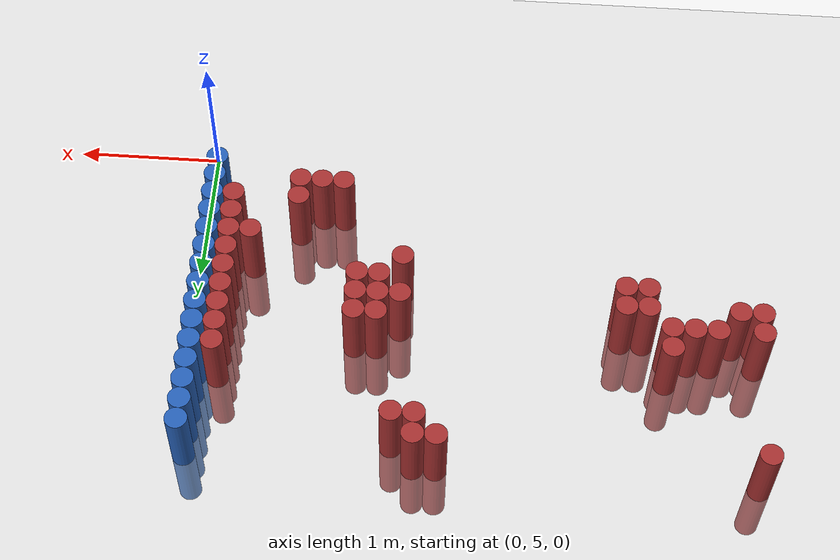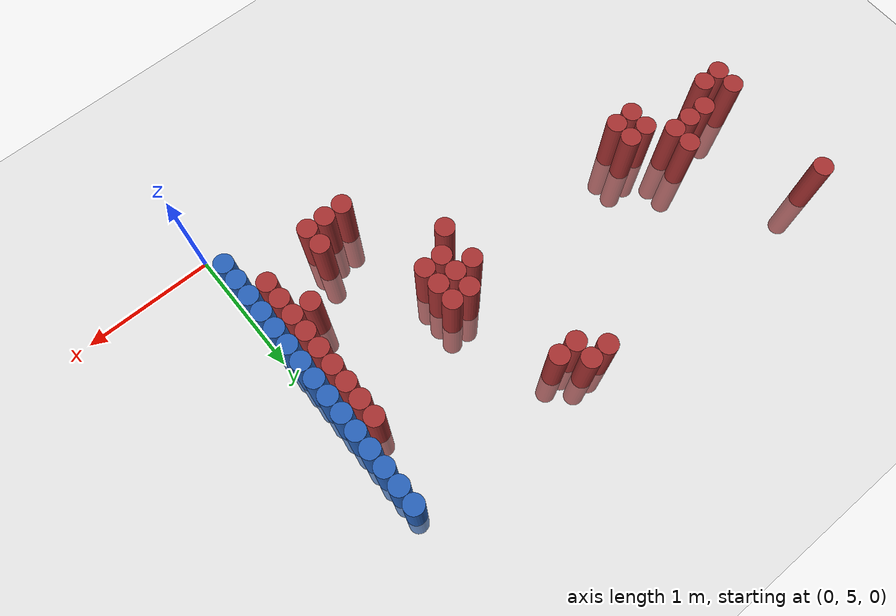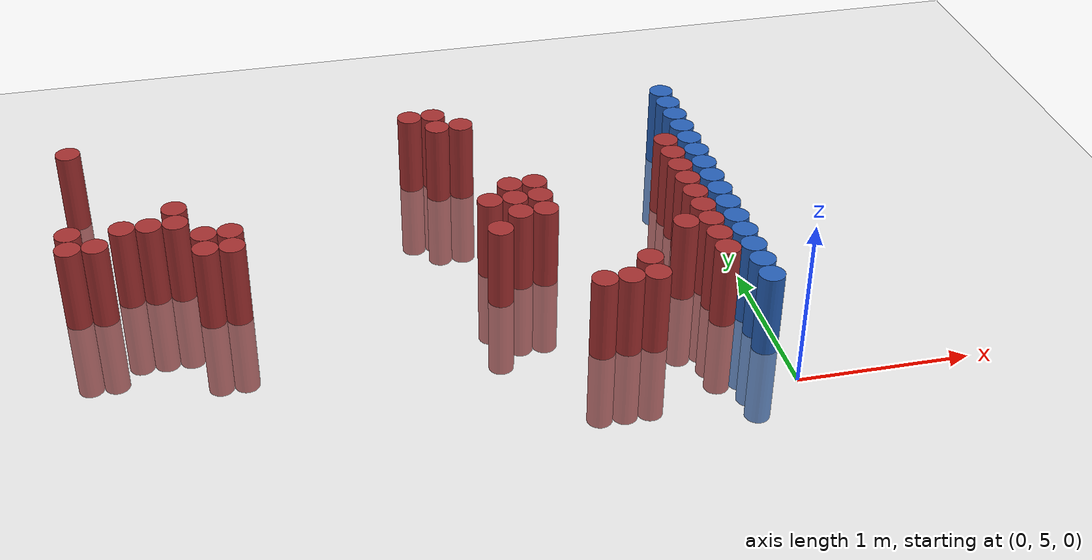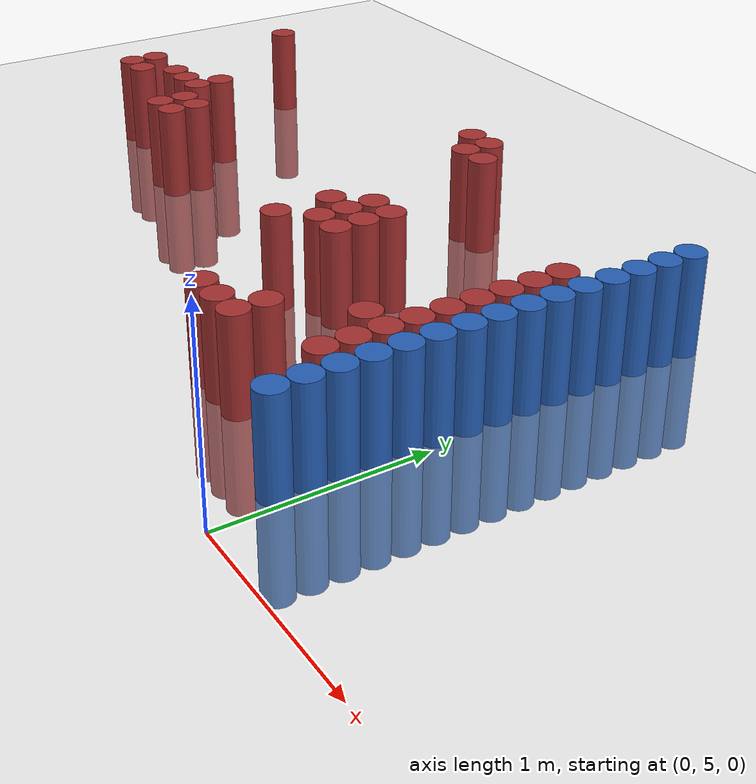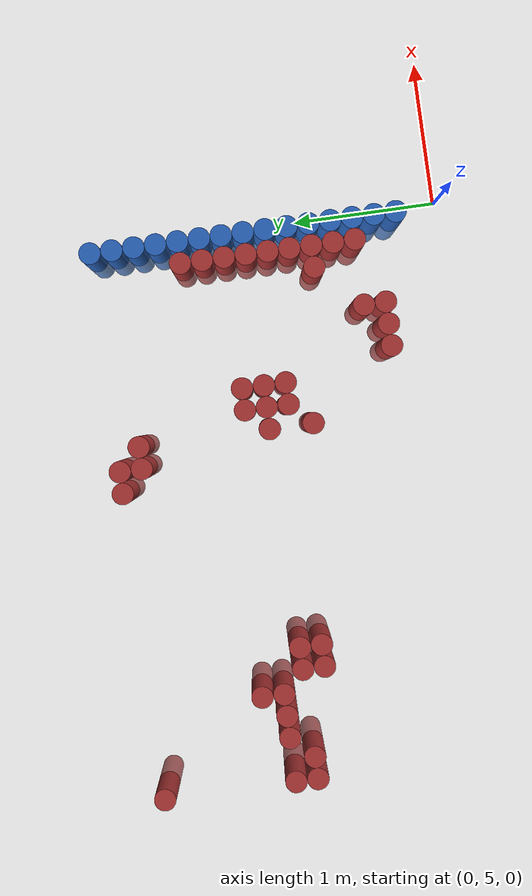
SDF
<sdf version="1.6">
 <world name="default">
  <model name="ground_plane">
   <static>1</static>
   <link name="link">
    <collision name="collision">
     <geometry><plane><normal>0 0 1</normal><size>100 100</size></plane></geometry>
     <surface><friction><ode><mu>100</mu><mu2>50</mu2></ode></friction></surface>
    </collision>
    <visual name="visual">
     <cast_shadows>0</cast_shadows>
     <geometry><plane><normal>0 0 1</normal><size>100 100</size></plane></geometry>
     <material>
      <script><uri>file://media/materials/scripts/gazebo.material</uri><name>Gazebo/Grey</name></script>
     </material>
    </visual>
   </link>
  </model>
  <model name="unit_cylinder_151">
   <static>1</static>
   <pose>-3.825000 6.375000 0.000000 0.000000 0.000000 0.000000</pose>
   <link name="link">
    <inertial>
     <mass>1</mass>
     <inertia><ixx>0.145833</ixx><ixy>0</ixy><ixz>0</ixz><iyy>0.145833</iyy><iyz>0</iyz><izz>0.125</izz></inertia>
    </inertial>
    <collision name="collision">
     <geometry><cylinder><radius>0.075000</radius><length>1</length></cylinder></geometry>
    </collision>
    <visual name="visual">
     <geometry><cylinder><radius>0.075000</radius><length>1</length></cylinder></geometry>
     <material>
      <ambient>0.648000 0.192000 0.192000 1</ambient>
      <diffuse>0.648000 0.192000 0.192000 1</diffuse>
     </material>
     <material>
      <script><name>Gazebo/Grey</name><uri>file://media/materials/scripts/gazebo.material</uri></script>
     </material>
    </visual>
   </link>
  </model>
  <model name="unit_cylinder_152">
   <static>1</static>
   <pose>-3.825000 6.525000 0.000000 0.000000 0.000000 0.000000</pose>
   <link name="link">
    <inertial>
     <mass>1</mass>
     <inertia><ixx>0.145833</ixx><ixy>0</ixy><ixz>0</ixz><iyy>0.145833</iyy><iyz>0</iyz><izz>0.125</izz></inertia>
    </inertial>
    <collision name="collision">
     <geometry><cylinder><radius>0.075000</radius><length>1</length></cylinder></geometry>
    </collision>
    <visual name="visual">
     <geometry><cylinder><radius>0.075000</radius><length>1</length></cylinder></geometry>
     <material>
      <ambient>0.648000 0.192000 0.192000 1</ambient>
      <diffuse>0.648000 0.192000 0.192000 1</diffuse>
     </material>
     <material>
      <script><name>Gazebo/Grey</name><uri>file://media/materials/scripts/gazebo.material</uri></script>
     </material>
    </visual>
   </link>
  </model>
  <model name="unit_cylinder_153">
   <static>1</static>
   <pose>-3.825000 7.425000 0.000000 0.000000 0.000000 0.000000</pose>
   <link name="link">
    <inertial>
     <mass>1</mass>
     <inertia><ixx>0.145833</ixx><ixy>0</ixy><ixz>0</ixz><iyy>0.145833</iyy><iyz>0</iyz><izz>0.125</izz></inertia>
    </inertial>
    <collision name="collision">
     <geometry><cylinder><radius>0.075000</radius><length>1</length></cylinder></geometry>
    </collision>
    <visual name="visual">
     <geometry><cylinder><radius>0.075000</radius><length>1</length></cylinder></geometry>
     <material>
      <ambient>0.648000 0.192000 0.192000 1</ambient>
      <diffuse>0.648000 0.192000 0.192000 1</diffuse>
     </material>
     <material>
      <script><name>Gazebo/Grey</name><uri>file://media/materials/scripts/gazebo.material</uri></script>
     </material>
    </visual>
   </link>
  </model>
  <model name="unit_cylinder_157">
   <static>1</static>
   <pose>-3.675000 6.375000 0.000000 0.000000 0.000000 0.000000</pose>
   <link name="link">
    <inertial>
     <mass>1</mass>
     <inertia><ixx>0.145833</ixx><ixy>0</ixy><ixz>0</ixz><iyy>0.145833</iyy><iyz>0</iyz><izz>0.125</izz></inertia>
    </inertial>
    <collision name="collision">
     <geometry><cylinder><radius>0.075000</radius><length>1</length></cylinder></geometry>
    </collision>
    <visual name="visual">
     <geometry><cylinder><radius>0.075000</radius><length>1</length></cylinder></geometry>
     <material>
      <ambient>0.648000 0.192000 0.192000 1</ambient>
      <diffuse>0.648000 0.192000 0.192000 1</diffuse>
     </material>
     <material>
      <script><name>Gazebo/Grey</name><uri>file://media/materials/scripts/gazebo.material</uri></script>
     </material>
    </visual>
   </link>
  </model>
  <model name="unit_cylinder_160">
   <static>1</static>
   <pose>-3.525000 6.525000 0.000000 0.000000 0.000000 0.000000</pose>
   <link name="link">
    <inertial>
     <mass>1</mass>
     <inertia><ixx>0.145833</ixx><ixy>0</ixy><ixz>0</ixz><iyy>0.145833</iyy><iyz>0</iyz><izz>0.125</izz></inertia>
    </inertial>
    <collision name="collision">
     <geometry><cylinder><radius>0.075000</radius><length>1</length></cylinder></geometry>
    </collision>
    <visual name="visual">
     <geometry><cylinder><radius>0.075000</radius><length>1</length></cylinder></geometry>
     <material>
      <ambient>0.648000 0.192000 0.192000 1</ambient>
      <diffuse>0.648000 0.192000 0.192000 1</diffuse>
     </material>
     <material>
      <script><name>Gazebo/Grey</name><uri>file://media/materials/scripts/gazebo.material</uri></script>
     </material>
    </visual>
   </link>
  </model>
  <model name="unit_cylinder_163">
   <static>1</static>
   <pose>-3.375000 6.525000 0.000000 0.000000 0.000000 0.000000</pose>
   <link name="link">
    <inertial>
     <mass>1</mass>
     <inertia><ixx>0.145833</ixx><ixy>0</ixy><ixz>0</ixz><iyy>0.145833</iyy><iyz>0</iyz><izz>0.125</izz></inertia>
    </inertial>
    <collision name="collision">
     <geometry><cylinder><radius>0.075000</radius><length>1</length></cylinder></geometry>
    </collision>
    <visual name="visual">
     <geometry><cylinder><radius>0.075000</radius><length>1</length></cylinder></geometry>
     <material>
      <ambient>0.648000 0.192000 0.192000 1</ambient>
      <diffuse>0.648000 0.192000 0.192000 1</diffuse>
     </material>
     <material>
      <script><name>Gazebo/Grey</name><uri>file://media/materials/scripts/gazebo.material</uri></script>
     </material>
    </visual>
   </link>
  </model>
  <model name="unit_cylinder_168">
   <static>1</static>
   <pose>-3.225000 6.525000 0.000000 0.000000 0.000000 0.000000</pose>
   <link name="link">
    <inertial>
     <mass>1</mass>
     <inertia><ixx>0.145833</ixx><ixy>0</ixy><ixz>0</ixz><iyy>0.145833</iyy><iyz>0</iyz><izz>0.125</izz></inertia>
    </inertial>
    <collision name="collision">
     <geometry><cylinder><radius>0.075000</radius><length>1</length></cylinder></geometry>
    </collision>
    <visual name="visual">
     <geometry><cylinder><radius>0.075000</radius><length>1</length></cylinder></geometry>
     <material>
      <ambient>0.648000 0.192000 0.192000 1</ambient>
      <diffuse>0.648000 0.192000 0.192000 1</diffuse>
     </material>
     <material>
      <script><name>Gazebo/Grey</name><uri>file://media/materials/scripts/gazebo.material</uri></script>
     </material>
    </visual>
   </link>
  </model>
  <model name="unit_cylinder_169">
   <static>1</static>
   <pose>-3.225000 6.675000 0.000000 0.000000 0.000000 0.000000</pose>
   <link name="link">
    <inertial>
     <mass>1</mass>
     <inertia><ixx>0.145833</ixx><ixy>0</ixy><ixz>0</ixz><iyy>0.145833</iyy><iyz>0</iyz><izz>0.125</izz></inertia>
    </inertial>
    <collision name="collision">
     <geometry><cylinder><radius>0.075000</radius><length>1</length></cylinder></geometry>
    </collision>
    <visual name="visual">
     <geometry><cylinder><radius>0.075000</radius><length>1</length></cylinder></geometry>
     <material>
      <ambient>0.648000 0.192000 0.192000 1</ambient>
      <diffuse>0.648000 0.192000 0.192000 1</diffuse>
     </material>
     <material>
      <script><name>Gazebo/Grey</name><uri>file://media/materials/scripts/gazebo.material</uri></script>
     </material>
    </visual>
   </link>
  </model>
  <model name="unit_cylinder_172">
   <static>1</static>
   <pose>-3.075000 6.225000 0.000000 0.000000 0.000000 0.000000</pose>
   <link name="link">
    <inertial>
     <mass>1</mass>
     <inertia><ixx>0.145833</ixx><ixy>0</ixy><ixz>0</ixz><iyy>0.145833</iyy><iyz>0</iyz><izz>0.125</izz></inertia>
    </inertial>
    <collision name="collision">
     <geometry><cylinder><radius>0.075000</radius><length>1</length></cylinder></geometry>
    </collision>
    <visual name="visual">
     <geometry><cylinder><radius>0.075000</radius><length>1</length></cylinder></geometry>
     <material>
      <ambient>0.648000 0.192000 0.192000 1</ambient>
      <diffuse>0.648000 0.192000 0.192000 1</diffuse>
     </material>
     <material>
      <script><name>Gazebo/Grey</name><uri>file://media/materials/scripts/gazebo.material</uri></script>
     </material>
    </visual>
   </link>
  </model>
  <model name="unit_cylinder_173">
   <static>1</static>
   <pose>-3.075000 6.375000 0.000000 0.000000 0.000000 0.000000</pose>
   <link name="link">
    <inertial>
     <mass>1</mass>
     <inertia><ixx>0.145833</ixx><ixy>0</ixy><ixz>0</ixz><iyy>0.145833</iyy><iyz>0</iyz><izz>0.125</izz></inertia>
    </inertial>
    <collision name="collision">
     <geometry><cylinder><radius>0.075000</radius><length>1</length></cylinder></geometry>
    </collision>
    <visual name="visual">
     <geometry><cylinder><radius>0.075000</radius><length>1</length></cylinder></geometry>
     <material>
      <ambient>0.648000 0.192000 0.192000 1</ambient>
      <diffuse>0.648000 0.192000 0.192000 1</diffuse>
     </material>
     <material>
      <script><name>Gazebo/Grey</name><uri>file://media/materials/scripts/gazebo.material</uri></script>
     </material>
    </visual>
   </link>
  </model>
  <model name="unit_cylinder_174">
   <static>1</static>
   <pose>-2.925000 6.225000 0.000000 0.000000 0.000000 0.000000</pose>
   <link name="link">
    <inertial>
     <mass>1</mass>
     <inertia><ixx>0.145833</ixx><ixy>0</ixy><ixz>0</ixz><iyy>0.145833</iyy><iyz>0</iyz><izz>0.125</izz></inertia>
    </inertial>
    <collision name="collision">
     <geometry><cylinder><radius>0.075000</radius><length>1</length></cylinder></geometry>
    </collision>
    <visual name="visual">
     <geometry><cylinder><radius>0.075000</radius><length>1</length></cylinder></geometry>
     <material>
      <ambient>0.648000 0.192000 0.192000 1</ambient>
      <diffuse>0.648000 0.192000 0.192000 1</diffuse>
     </material>
     <material>
      <script><name>Gazebo/Grey</name><uri>file://media/materials/scripts/gazebo.material</uri></script>
     </material>
    </visual>
   </link>
  </model>
  <model name="unit_cylinder_175">
   <static>1</static>
   <pose>-2.925000 6.375000 0.000000 0.000000 0.000000 0.000000</pose>
   <link name="link">
    <inertial>
     <mass>1</mass>
     <inertia><ixx>0.145833</ixx><ixy>0</ixy><ixz>0</ixz><iyy>0.145833</iyy><iyz>0</iyz><izz>0.125</izz></inertia>
    </inertial>
    <collision name="collision">
     <geometry><cylinder><radius>0.075000</radius><length>1</length></cylinder></geometry>
    </collision>
    <visual name="visual">
     <geometry><cylinder><radius>0.075000</radius><length>1</length></cylinder></geometry>
     <material>
      <ambient>0.648000 0.192000 0.192000 1</ambient>
      <diffuse>0.648000 0.192000 0.192000 1</diffuse>
     </material>
     <material>
      <script><name>Gazebo/Grey</name><uri>file://media/materials/scripts/gazebo.material</uri></script>
     </material>
    </visual>
   </link>
  </model>
  <model name="unit_cylinder_185">
   <static>1</static>
   <pose>-1.725000 7.425000 0.000000 0.000000 0.000000 0.000000</pose>
   <link name="link">
    <inertial>
     <mass>1</mass>
     <inertia><ixx>0.145833</ixx><ixy>0</ixy><ixz>0</ixz><iyy>0.145833</iyy><iyz>0</iyz><izz>0.125</izz></inertia>
    </inertial>
    <collision name="collision">
     <geometry><cylinder><radius>0.075000</radius><length>1</length></cylinder></geometry>
    </collision>
    <visual name="visual">
     <geometry><cylinder><radius>0.075000</radius><length>1</length></cylinder></geometry>
     <material>
      <ambient>0.648000 0.192000 0.192000 1</ambient>
      <diffuse>0.648000 0.192000 0.192000 1</diffuse>
     </material>
     <material>
      <script><name>Gazebo/Grey</name><uri>file://media/materials/scripts/gazebo.material</uri></script>
     </material>
    </visual>
   </link>
  </model>
  <model name="unit_cylinder_187">
   <static>1</static>
   <pose>-1.575000 7.275000 0.000000 0.000000 0.000000 0.000000</pose>
   <link name="link">
    <inertial>
     <mass>1</mass>
     <inertia><ixx>0.145833</ixx><ixy>0</ixy><ixz>0</ixz><iyy>0.145833</iyy><iyz>0</iyz><izz>0.125</izz></inertia>
    </inertial>
    <collision name="collision">
     <geometry><cylinder><radius>0.075000</radius><length>1</length></cylinder></geometry>
    </collision>
    <visual name="visual">
     <geometry><cylinder><radius>0.075000</radius><length>1</length></cylinder></geometry>
     <material>
      <ambient>0.648000 0.192000 0.192000 1</ambient>
      <diffuse>0.648000 0.192000 0.192000 1</diffuse>
     </material>
     <material>
      <script><name>Gazebo/Grey</name><uri>file://media/materials/scripts/gazebo.material</uri></script>
     </material>
    </visual>
   </link>
  </model>
  <model name="unit_cylinder_188">
   <static>1</static>
   <pose>-1.575000 7.425000 0.000000 0.000000 0.000000 0.000000</pose>
   <link name="link">
    <inertial>
     <mass>1</mass>
     <inertia><ixx>0.145833</ixx><ixy>0</ixy><ixz>0</ixz><iyy>0.145833</iyy><iyz>0</iyz><izz>0.125</izz></inertia>
    </inertial>
    <collision name="collision">
     <geometry><cylinder><radius>0.075000</radius><length>1</length></cylinder></geometry>
    </collision>
    <visual name="visual">
     <geometry><cylinder><radius>0.075000</radius><length>1</length></cylinder></geometry>
     <material>
      <ambient>0.648000 0.192000 0.192000 1</ambient>
      <diffuse>0.648000 0.192000 0.192000 1</diffuse>
     </material>
     <material>
      <script><name>Gazebo/Grey</name><uri>file://media/materials/scripts/gazebo.material</uri></script>
     </material>
    </visual>
   </link>
  </model>
  <model name="unit_cylinder_189">
   <static>1</static>
   <pose>-1.425000 6.075000 0.000000 0.000000 0.000000 0.000000</pose>
   <link name="link">
    <inertial>
     <mass>1</mass>
     <inertia><ixx>0.145833</ixx><ixy>0</ixy><ixz>0</ixz><iyy>0.145833</iyy><iyz>0</iyz><izz>0.125</izz></inertia>
    </inertial>
    <collision name="collision">
     <geometry><cylinder><radius>0.075000</radius><length>1</length></cylinder></geometry>
    </collision>
    <visual name="visual">
     <geometry><cylinder><radius>0.075000</radius><length>1</length></cylinder></geometry>
     <material>
      <ambient>0.648000 0.192000 0.192000 1</ambient>
      <diffuse>0.648000 0.192000 0.192000 1</diffuse>
     </material>
     <material>
      <script><name>Gazebo/Grey</name><uri>file://media/materials/scripts/gazebo.material</uri></script>
     </material>
    </visual>
   </link>
  </model>
  <model name="unit_cylinder_190">
   <static>1</static>
   <pose>-1.425000 6.375000 0.000000 0.000000 0.000000 0.000000</pose>
   <link name="link">
    <inertial>
     <mass>1</mass>
     <inertia><ixx>0.145833</ixx><ixy>0</ixy><ixz>0</ixz><iyy>0.145833</iyy><iyz>0</iyz><izz>0.125</izz></inertia>
    </inertial>
    <collision name="collision">
     <geometry><cylinder><radius>0.075000</radius><length>1</length></cylinder></geometry>
    </collision>
    <visual name="visual">
     <geometry><cylinder><radius>0.075000</radius><length>1</length></cylinder></geometry>
     <material>
      <ambient>0.648000 0.192000 0.192000 1</ambient>
      <diffuse>0.648000 0.192000 0.192000 1</diffuse>
     </material>
     <material>
      <script><name>Gazebo/Grey</name><uri>file://media/materials/scripts/gazebo.material</uri></script>
     </material>
    </visual>
   </link>
  </model>
  <model name="unit_cylinder_191">
   <static>1</static>
   <pose>-1.425000 7.275000 0.000000 0.000000 0.000000 0.000000</pose>
   <link name="link">
    <inertial>
     <mass>1</mass>
     <inertia><ixx>0.145833</ixx><ixy>0</ixy><ixz>0</ixz><iyy>0.145833</iyy><iyz>0</iyz><izz>0.125</izz></inertia>
    </inertial>
    <collision name="collision">
     <geometry><cylinder><radius>0.075000</radius><length>1</length></cylinder></geometry>
    </collision>
    <visual name="visual">
     <geometry><cylinder><radius>0.075000</radius><length>1</length></cylinder></geometry>
     <material>
      <ambient>0.648000 0.192000 0.192000 1</ambient>
      <diffuse>0.648000 0.192000 0.192000 1</diffuse>
     </material>
     <material>
      <script><name>Gazebo/Grey</name><uri>file://media/materials/scripts/gazebo.material</uri></script>
     </material>
    </visual>
   </link>
  </model>
  <model name="unit_cylinder_193">
   <static>1</static>
   <pose>-1.275000 6.225000 0.000000 0.000000 0.000000 0.000000</pose>
   <link name="link">
    <inertial>
     <mass>1</mass>
     <inertia><ixx>0.145833</ixx><ixy>0</ixy><ixz>0</ixz><iyy>0.145833</iyy><iyz>0</iyz><izz>0.125</izz></inertia>
    </inertial>
    <collision name="collision">
     <geometry><cylinder><radius>0.075000</radius><length>1</length></cylinder></geometry>
    </collision>
    <visual name="visual">
     <geometry><cylinder><radius>0.075000</radius><length>1</length></cylinder></geometry>
     <material>
      <ambient>0.648000 0.192000 0.192000 1</ambient>
      <diffuse>0.648000 0.192000 0.192000 1</diffuse>
     </material>
     <material>
      <script><name>Gazebo/Grey</name><uri>file://media/materials/scripts/gazebo.material</uri></script>
     </material>
    </visual>
   </link>
  </model>
  <model name="unit_cylinder_194">
   <static>1</static>
   <pose>-1.275000 6.375000 0.000000 0.000000 0.000000 0.000000</pose>
   <link name="link">
    <inertial>
     <mass>1</mass>
     <inertia><ixx>0.145833</ixx><ixy>0</ixy><ixz>0</ixz><iyy>0.145833</iyy><iyz>0</iyz><izz>0.125</izz></inertia>
    </inertial>
    <collision name="collision">
     <geometry><cylinder><radius>0.075000</radius><length>1</length></cylinder></geometry>
    </collision>
    <visual name="visual">
     <geometry><cylinder><radius>0.075000</radius><length>1</length></cylinder></geometry>
     <material>
      <ambient>0.648000 0.192000 0.192000 1</ambient>
      <diffuse>0.648000 0.192000 0.192000 1</diffuse>
     </material>
     <material>
      <script><name>Gazebo/Grey</name><uri>file://media/materials/scripts/gazebo.material</uri></script>
     </material>
    </visual>
   </link>
  </model>
  <model name="unit_cylinder_195">
   <static>1</static>
   <pose>-1.275000 6.525000 0.000000 0.000000 0.000000 0.000000</pose>
   <link name="link">
    <inertial>
     <mass>1</mass>
     <inertia><ixx>0.145833</ixx><ixy>0</ixy><ixz>0</ixz><iyy>0.145833</iyy><iyz>0</iyz><izz>0.125</izz></inertia>
    </inertial>
    <collision name="collision">
     <geometry><cylinder><radius>0.075000</radius><length>1</length></cylinder></geometry>
    </collision>
    <visual name="visual">
     <geometry><cylinder><radius>0.075000</radius><length>1</length></cylinder></geometry>
     <material>
      <ambient>0.648000 0.192000 0.192000 1</ambient>
      <diffuse>0.648000 0.192000 0.192000 1</diffuse>
     </material>
     <material>
      <script><name>Gazebo/Grey</name><uri>file://media/materials/scripts/gazebo.material</uri></script>
     </material>
    </visual>
   </link>
  </model>
  <model name="unit_cylinder_198">
   <static>1</static>
   <pose>-1.125000 6.225000 0.000000 0.000000 0.000000 0.000000</pose>
   <link name="link">
    <inertial>
     <mass>1</mass>
     <inertia><ixx>0.145833</ixx><ixy>0</ixy><ixz>0</ixz><iyy>0.145833</iyy><iyz>0</iyz><izz>0.125</izz></inertia>
    </inertial>
    <collision name="collision">
     <geometry><cylinder><radius>0.075000</radius><length>1</length></cylinder></geometry>
    </collision>
    <visual name="visual">
     <geometry><cylinder><radius>0.075000</radius><length>1</length></cylinder></geometry>
     <material>
      <ambient>0.648000 0.192000 0.192000 1</ambient>
      <diffuse>0.648000 0.192000 0.192000 1</diffuse>
     </material>
     <material>
      <script><name>Gazebo/Grey</name><uri>file://media/materials/scripts/gazebo.material</uri></script>
     </material>
    </visual>
   </link>
  </model>
  <model name="unit_cylinder_199">
   <static>1</static>
   <pose>-1.125000 6.375000 0.000000 0.000000 0.000000 0.000000</pose>
   <link name="link">
    <inertial>
     <mass>1</mass>
     <inertia><ixx>0.145833</ixx><ixy>0</ixy><ixz>0</ixz><iyy>0.145833</iyy><iyz>0</iyz><izz>0.125</izz></inertia>
    </inertial>
    <collision name="collision">
     <geometry><cylinder><radius>0.075000</radius><length>1</length></cylinder></geometry>
    </collision>
    <visual name="visual">
     <geometry><cylinder><radius>0.075000</radius><length>1</length></cylinder></geometry>
     <material>
      <ambient>0.648000 0.192000 0.192000 1</ambient>
      <diffuse>0.648000 0.192000 0.192000 1</diffuse>
     </material>
     <material>
      <script><name>Gazebo/Grey</name><uri>file://media/materials/scripts/gazebo.material</uri></script>
     </material>
    </visual>
   </link>
  </model>
  <model name="unit_cylinder_200">
   <static>1</static>
   <pose>-1.125000 6.525000 0.000000 0.000000 0.000000 0.000000</pose>
   <link name="link">
    <inertial>
     <mass>1</mass>
     <inertia><ixx>0.145833</ixx><ixy>0</ixy><ixz>0</ixz><iyy>0.145833</iyy><iyz>0</iyz><izz>0.125</izz></inertia>
    </inertial>
    <collision name="collision">
     <geometry><cylinder><radius>0.075000</radius><length>1</length></cylinder></geometry>
    </collision>
    <visual name="visual">
     <geometry><cylinder><radius>0.075000</radius><length>1</length></cylinder></geometry>
     <material>
      <ambient>0.648000 0.192000 0.192000 1</ambient>
      <diffuse>0.648000 0.192000 0.192000 1</diffuse>
     </material>
     <material>
      <script><name>Gazebo/Grey</name><uri>file://media/materials/scripts/gazebo.material</uri></script>
     </material>
    </visual>
   </link>
  </model>
  <model name="unit_cylinder_202">
   <static>1</static>
   <pose>-0.975000 5.475000 0.000000 0.000000 0.000000 0.000000</pose>
   <link name="link">
    <inertial>
     <mass>1</mass>
     <inertia><ixx>0.145833</ixx><ixy>0</ixy><ixz>0</ixz><iyy>0.145833</iyy><iyz>0</iyz><izz>0.125</izz></inertia>
    </inertial>
    <collision name="collision">
     <geometry><cylinder><radius>0.075000</radius><length>1</length></cylinder></geometry>
    </collision>
    <visual name="visual">
     <geometry><cylinder><radius>0.075000</radius><length>1</length></cylinder></geometry>
     <material>
      <ambient>0.648000 0.192000 0.192000 1</ambient>
      <diffuse>0.648000 0.192000 0.192000 1</diffuse>
     </material>
     <material>
      <script><name>Gazebo/Grey</name><uri>file://media/materials/scripts/gazebo.material</uri></script>
     </material>
    </visual>
   </link>
  </model>
  <model name="unit_cylinder_206">
   <static>1</static>
   <pose>-0.825000 5.475000 0.000000 0.000000 0.000000 0.000000</pose>
   <link name="link">
    <inertial>
     <mass>1</mass>
     <inertia><ixx>0.145833</ixx><ixy>0</ixy><ixz>0</ixz><iyy>0.145833</iyy><iyz>0</iyz><izz>0.125</izz></inertia>
    </inertial>
    <collision name="collision">
     <geometry><cylinder><radius>0.075000</radius><length>1</length></cylinder></geometry>
    </collision>
    <visual name="visual">
     <geometry><cylinder><radius>0.075000</radius><length>1</length></cylinder></geometry>
     <material>
      <ambient>0.648000 0.192000 0.192000 1</ambient>
      <diffuse>0.648000 0.192000 0.192000 1</diffuse>
     </material>
     <material>
      <script><name>Gazebo/Grey</name><uri>file://media/materials/scripts/gazebo.material</uri></script>
     </material>
    </visual>
   </link>
  </model>
  <model name="unit_cylinder_210">
   <static>1</static>
   <pose>-0.675000 5.475000 0.000000 0.000000 0.000000 0.000000</pose>
   <link name="link">
    <inertial>
     <mass>1</mass>
     <inertia><ixx>0.145833</ixx><ixy>0</ixy><ixz>0</ixz><iyy>0.145833</iyy><iyz>0</iyz><izz>0.125</izz></inertia>
    </inertial>
    <collision name="collision">
     <geometry><cylinder><radius>0.075000</radius><length>1</length></cylinder></geometry>
    </collision>
    <visual name="visual">
     <geometry><cylinder><radius>0.075000</radius><length>1</length></cylinder></geometry>
     <material>
      <ambient>0.648000 0.192000 0.192000 1</ambient>
      <diffuse>0.648000 0.192000 0.192000 1</diffuse>
     </material>
     <material>
      <script><name>Gazebo/Grey</name><uri>file://media/materials/scripts/gazebo.material</uri></script>
     </material>
    </visual>
   </link>
  </model>
  <model name="unit_cylinder_211">
   <static>1</static>
   <pose>-0.675000 5.625000 0.000000 0.000000 0.000000 0.000000</pose>
   <link name="link">
    <inertial>
     <mass>1</mass>
     <inertia><ixx>0.145833</ixx><ixy>0</ixy><ixz>0</ixz><iyy>0.145833</iyy><iyz>0</iyz><izz>0.125</izz></inertia>
    </inertial>
    <collision name="collision">
     <geometry><cylinder><radius>0.075000</radius><length>1</length></cylinder></geometry>
    </collision>
    <visual name="visual">
     <geometry><cylinder><radius>0.075000</radius><length>1</length></cylinder></geometry>
     <material>
      <ambient>0.648000 0.192000 0.192000 1</ambient>
      <diffuse>0.648000 0.192000 0.192000 1</diffuse>
     </material>
     <material>
      <script><name>Gazebo/Grey</name><uri>file://media/materials/scripts/gazebo.material</uri></script>
     </material>
    </visual>
   </link>
  </model>
  <model name="unit_cylinder_217">
   <static>1</static>
   <pose>-0.375000 5.925000 0.000000 0.000000 0.000000 0.000000</pose>
   <link name="link">
    <inertial>
     <mass>1</mass>
     <inertia><ixx>0.145833</ixx><ixy>0</ixy><ixz>0</ixz><iyy>0.145833</iyy><iyz>0</iyz><izz>0.125</izz></inertia>
    </inertial>
    <collision name="collision">
     <geometry><cylinder><radius>0.075000</radius><length>1</length></cylinder></geometry>
    </collision>
    <visual name="visual">
     <geometry><cylinder><radius>0.075000</radius><length>1</length></cylinder></geometry>
     <material>
      <ambient>0.648000 0.192000 0.192000 1</ambient>
      <diffuse>0.648000 0.192000 0.192000 1</diffuse>
     </material>
     <material>
      <script><name>Gazebo/Grey</name><uri>file://media/materials/scripts/gazebo.material</uri></script>
     </material>
    </visual>
   </link>
  </model>
  <model name="unit_cylinder_218">
   <static>1</static>
   <pose>-0.225000 5.625000 0.000000 0.000000 0.000000 0.000000</pose>
   <link name="link">
    <inertial>
     <mass>1</mass>
     <inertia><ixx>0.145833</ixx><ixy>0</ixy><ixz>0</ixz><iyy>0.145833</iyy><iyz>0</iyz><izz>0.125</izz></inertia>
    </inertial>
    <collision name="collision">
     <geometry><cylinder><radius>0.075000</radius><length>1</length></cylinder></geometry>
    </collision>
    <visual name="visual">
     <geometry><cylinder><radius>0.075000</radius><length>1</length></cylinder></geometry>
     <material>
      <ambient>0.648000 0.192000 0.192000 1</ambient>
      <diffuse>0.648000 0.192000 0.192000 1</diffuse>
     </material>
     <material>
      <script><name>Gazebo/Grey</name><uri>file://media/materials/scripts/gazebo.material</uri></script>
     </material>
    </visual>
   </link>
  </model>
  <model name="unit_cylinder_219">
   <static>1</static>
   <pose>-0.225000 5.775000 0.000000 0.000000 0.000000 0.000000</pose>
   <link name="link">
    <inertial>
     <mass>1</mass>
     <inertia><ixx>0.145833</ixx><ixy>0</ixy><ixz>0</ixz><iyy>0.145833</iyy><iyz>0</iyz><izz>0.125</izz></inertia>
    </inertial>
    <collision name="collision">
     <geometry><cylinder><radius>0.075000</radius><length>1</length></cylinder></geometry>
    </collision>
    <visual name="visual">
     <geometry><cylinder><radius>0.075000</radius><length>1</length></cylinder></geometry>
     <material>
      <ambient>0.648000 0.192000 0.192000 1</ambient>
      <diffuse>0.648000 0.192000 0.192000 1</diffuse>
     </material>
     <material>
      <script><name>Gazebo/Grey</name><uri>file://media/materials/scripts/gazebo.material</uri></script>
     </material>
    </visual>
   </link>
  </model>
  <model name="unit_cylinder_220">
   <static>1</static>
   <pose>-0.225000 5.925000 0.000000 0.000000 0.000000 0.000000</pose>
   <link name="link">
    <inertial>
     <mass>1</mass>
     <inertia><ixx>0.145833</ixx><ixy>0</ixy><ixz>0</ixz><iyy>0.145833</iyy><iyz>0</iyz><izz>0.125</izz></inertia>
    </inertial>
    <collision name="collision">
     <geometry><cylinder><radius>0.075000</radius><length>1</length></cylinder></geometry>
    </collision>
    <visual name="visual">
     <geometry><cylinder><radius>0.075000</radius><length>1</length></cylinder></geometry>
     <material>
      <ambient>0.648000 0.192000 0.192000 1</ambient>
      <diffuse>0.648000 0.192000 0.192000 1</diffuse>
     </material>
     <material>
      <script><name>Gazebo/Grey</name><uri>file://media/materials/scripts/gazebo.material</uri></script>
     </material>
    </visual>
   </link>
  </model>
  <model name="unit_cylinder_221">
   <static>1</static>
   <pose>-0.225000 6.075000 0.000000 0.000000 0.000000 0.000000</pose>
   <link name="link">
    <inertial>
     <mass>1</mass>
     <inertia><ixx>0.145833</ixx><ixy>0</ixy><ixz>0</ixz><iyy>0.145833</iyy><iyz>0</iyz><izz>0.125</izz></inertia>
    </inertial>
    <collision name="collision">
     <geometry><cylinder><radius>0.075000</radius><length>1</length></cylinder></geometry>
    </collision>
    <visual name="visual">
     <geometry><cylinder><radius>0.075000</radius><length>1</length></cylinder></geometry>
     <material>
      <ambient>0.648000 0.192000 0.192000 1</ambient>
      <diffuse>0.648000 0.192000 0.192000 1</diffuse>
     </material>
     <material>
      <script><name>Gazebo/Grey</name><uri>file://media/materials/scripts/gazebo.material</uri></script>
     </material>
    </visual>
   </link>
  </model>
  <model name="unit_cylinder_222">
   <static>1</static>
   <pose>-0.225000 6.225000 0.000000 0.000000 0.000000 0.000000</pose>
   <link name="link">
    <inertial>
     <mass>1</mass>
     <inertia><ixx>0.145833</ixx><ixy>0</ixy><ixz>0</ixz><iyy>0.145833</iyy><iyz>0</iyz><izz>0.125</izz></inertia>
    </inertial>
    <collision name="collision">
     <geometry><cylinder><radius>0.075000</radius><length>1</length></cylinder></geometry>
    </collision>
    <visual name="visual">
     <geometry><cylinder><radius>0.075000</radius><length>1</length></cylinder></geometry>
     <material>
      <ambient>0.648000 0.192000 0.192000 1</ambient>
      <diffuse>0.648000 0.192000 0.192000 1</diffuse>
     </material>
     <material>
      <script><name>Gazebo/Grey</name><uri>file://media/materials/scripts/gazebo.material</uri></script>
     </material>
    </visual>
   </link>
  </model>
  <model name="unit_cylinder_223">
   <static>1</static>
   <pose>-0.225000 6.375000 0.000000 0.000000 0.000000 0.000000</pose>
   <link name="link">
    <inertial>
     <mass>1</mass>
     <inertia><ixx>0.145833</ixx><ixy>0</ixy><ixz>0</ixz><iyy>0.145833</iyy><iyz>0</iyz><izz>0.125</izz></inertia>
    </inertial>
    <collision name="collision">
     <geometry><cylinder><radius>0.075000</radius><length>1</length></cylinder></geometry>
    </collision>
    <visual name="visual">
     <geometry><cylinder><radius>0.075000</radius><length>1</length></cylinder></geometry>
     <material>
      <ambient>0.648000 0.192000 0.192000 1</ambient>
      <diffuse>0.648000 0.192000 0.192000 1</diffuse>
     </material>
     <material>
      <script><name>Gazebo/Grey</name><uri>file://media/materials/scripts/gazebo.material</uri></script>
     </material>
    </visual>
   </link>
  </model>
  <model name="unit_cylinder_224">
   <static>1</static>
   <pose>-0.225000 6.525000 0.000000 0.000000 0.000000 0.000000</pose>
   <link name="link">
    <inertial>
     <mass>1</mass>
     <inertia><ixx>0.145833</ixx><ixy>0</ixy><ixz>0</ixz><iyy>0.145833</iyy><iyz>0</iyz><izz>0.125</izz></inertia>
    </inertial>
    <collision name="collision">
     <geometry><cylinder><radius>0.075000</radius><length>1</length></cylinder></geometry>
    </collision>
    <visual name="visual">
     <geometry><cylinder><radius>0.075000</radius><length>1</length></cylinder></geometry>
     <material>
      <ambient>0.648000 0.192000 0.192000 1</ambient>
      <diffuse>0.648000 0.192000 0.192000 1</diffuse>
     </material>
     <material>
      <script><name>Gazebo/Grey</name><uri>file://media/materials/scripts/gazebo.material</uri></script>
     </material>
    </visual>
   </link>
  </model>
  <model name="unit_cylinder_225">
   <static>1</static>
   <pose>-0.225000 6.675000 0.000000 0.000000 0.000000 0.000000</pose>
   <link name="link">
    <inertial>
     <mass>1</mass>
     <inertia><ixx>0.145833</ixx><ixy>0</ixy><ixz>0</ixz><iyy>0.145833</iyy><iyz>0</iyz><izz>0.125</izz></inertia>
    </inertial>
    <collision name="collision">
     <geometry><cylinder><radius>0.075000</radius><length>1</length></cylinder></geometry>
    </collision>
    <visual name="visual">
     <geometry><cylinder><radius>0.075000</radius><length>1</length></cylinder></geometry>
     <material>
      <ambient>0.648000 0.192000 0.192000 1</ambient>
      <diffuse>0.648000 0.192000 0.192000 1</diffuse>
     </material>
     <material>
      <script><name>Gazebo/Grey</name><uri>file://media/materials/scripts/gazebo.material</uri></script>
     </material>
    </visual>
   </link>
  </model>
  <model name="unit_cylinder_226">
   <static>1</static>
   <pose>-0.225000 6.825000 0.000000 0.000000 0.000000 0.000000</pose>
   <link name="link">
    <inertial>
     <mass>1</mass>
     <inertia><ixx>0.145833</ixx><ixy>0</ixy><ixz>0</ixz><iyy>0.145833</iyy><iyz>0</iyz><izz>0.125</izz></inertia>
    </inertial>
    <collision name="collision">
     <geometry><cylinder><radius>0.075000</radius><length>1</length></cylinder></geometry>
    </collision>
    <visual name="visual">
     <geometry><cylinder><radius>0.075000</radius><length>1</length></cylinder></geometry>
     <material>
      <ambient>0.648000 0.192000 0.192000 1</ambient>
      <diffuse>0.648000 0.192000 0.192000 1</diffuse>
     </material>
     <material>
      <script><name>Gazebo/Grey</name><uri>file://media/materials/scripts/gazebo.material</uri></script>
     </material>
    </visual>
   </link>
  </model>
  <model name="unit_cylinder_237">
   <static>1</static>
   <pose>-0.075000 5.325000 0.000000 0.000000 0.000000 0.000000</pose>
   <link name="link">
    <inertial>
     <mass>1</mass>
     <inertia><ixx>0.145833</ixx><ixy>0</ixy><ixz>0</ixz><iyy>0.145833</iyy><iyz>0</iyz><izz>0.125</izz></inertia>
    </inertial>
    <collision name="collision">
     <geometry><cylinder><radius>0.075000</radius><length>1</length></cylinder></geometry>
    </collision>
    <visual name="visual">
     <geometry><cylinder><radius>0.075000</radius><length>1</length></cylinder></geometry>
     <material>
      <ambient>0.152000 0.379000 0.720000 1</ambient>
      <diffuse>0.152000 0.379000 0.720000 1</diffuse>
     </material>
     <material>
      <script><name>Gazebo/Grey</name><uri>file://media/materials/scripts/gazebo.material</uri></script>
     </material>
    </visual>
   </link>
  </model>
  <model name="unit_cylinder_238">
   <static>1</static>
   <pose>-0.075000 5.475000 0.000000 0.000000 0.000000 0.000000</pose>
   <link name="link">
    <inertial>
     <mass>1</mass>
     <inertia><ixx>0.145833</ixx><ixy>0</ixy><ixz>0</ixz><iyy>0.145833</iyy><iyz>0</iyz><izz>0.125</izz></inertia>
    </inertial>
    <collision name="collision">
     <geometry><cylinder><radius>0.075000</radius><length>1</length></cylinder></geometry>
    </collision>
    <visual name="visual">
     <geometry><cylinder><radius>0.075000</radius><length>1</length></cylinder></geometry>
     <material>
      <ambient>0.152000 0.379000 0.720000 1</ambient>
      <diffuse>0.152000 0.379000 0.720000 1</diffuse>
     </material>
     <material>
      <script><name>Gazebo/Grey</name><uri>file://media/materials/scripts/gazebo.material</uri></script>
     </material>
    </visual>
   </link>
  </model>
  <model name="unit_cylinder_239">
   <static>1</static>
   <pose>-0.075000 5.625000 0.000000 0.000000 0.000000 0.000000</pose>
   <link name="link">
    <inertial>
     <mass>1</mass>
     <inertia><ixx>0.145833</ixx><ixy>0</ixy><ixz>0</ixz><iyy>0.145833</iyy><iyz>0</iyz><izz>0.125</izz></inertia>
    </inertial>
    <collision name="collision">
     <geometry><cylinder><radius>0.075000</radius><length>1</length></cylinder></geometry>
    </collision>
    <visual name="visual">
     <geometry><cylinder><radius>0.075000</radius><length>1</length></cylinder></geometry>
     <material>
      <ambient>0.152000 0.379000 0.720000 1</ambient>
      <diffuse>0.152000 0.379000 0.720000 1</diffuse>
     </material>
     <material>
      <script><name>Gazebo/Grey</name><uri>file://media/materials/scripts/gazebo.material</uri></script>
     </material>
    </visual>
   </link>
  </model>
  <model name="unit_cylinder_240">
   <static>1</static>
   <pose>-0.075000 5.775000 0.000000 0.000000 0.000000 0.000000</pose>
   <link name="link">
    <inertial>
     <mass>1</mass>
     <inertia><ixx>0.145833</ixx><ixy>0</ixy><ixz>0</ixz><iyy>0.145833</iyy><iyz>0</iyz><izz>0.125</izz></inertia>
    </inertial>
    <collision name="collision">
     <geometry><cylinder><radius>0.075000</radius><length>1</length></cylinder></geometry>
    </collision>
    <visual name="visual">
     <geometry><cylinder><radius>0.075000</radius><length>1</length></cylinder></geometry>
     <material>
      <ambient>0.152000 0.379000 0.720000 1</ambient>
      <diffuse>0.152000 0.379000 0.720000 1</diffuse>
     </material>
     <material>
      <script><name>Gazebo/Grey</name><uri>file://media/materials/scripts/gazebo.material</uri></script>
     </material>
    </visual>
   </link>
  </model>
  <model name="unit_cylinder_241">
   <static>1</static>
   <pose>-0.075000 5.925000 0.000000 0.000000 0.000000 0.000000</pose>
   <link name="link">
    <inertial>
     <mass>1</mass>
     <inertia><ixx>0.145833</ixx><ixy>0</ixy><ixz>0</ixz><iyy>0.145833</iyy><iyz>0</iyz><izz>0.125</izz></inertia>
    </inertial>
    <collision name="collision">
     <geometry><cylinder><radius>0.075000</radius><length>1</length></cylinder></geometry>
    </collision>
    <visual name="visual">
     <geometry><cylinder><radius>0.075000</radius><length>1</length></cylinder></geometry>
     <material>
      <ambient>0.152000 0.379000 0.720000 1</ambient>
      <diffuse>0.152000 0.379000 0.720000 1</diffuse>
     </material>
     <material>
      <script><name>Gazebo/Grey</name><uri>file://media/materials/scripts/gazebo.material</uri></script>
     </material>
    </visual>
   </link>
  </model>
  <model name="unit_cylinder_242">
   <static>1</static>
   <pose>-0.075000 6.075000 0.000000 0.000000 0.000000 0.000000</pose>
   <link name="link">
    <inertial>
     <mass>1</mass>
     <inertia><ixx>0.145833</ixx><ixy>0</ixy><ixz>0</ixz><iyy>0.145833</iyy><iyz>0</iyz><izz>0.125</izz></inertia>
    </inertial>
    <collision name="collision">
     <geometry><cylinder><radius>0.075000</radius><length>1</length></cylinder></geometry>
    </collision>
    <visual name="visual">
     <geometry><cylinder><radius>0.075000</radius><length>1</length></cylinder></geometry>
     <material>
      <ambient>0.152000 0.379000 0.720000 1</ambient>
      <diffuse>0.152000 0.379000 0.720000 1</diffuse>
     </material>
     <material>
      <script><name>Gazebo/Grey</name><uri>file://media/materials/scripts/gazebo.material</uri></script>
     </material>
    </visual>
   </link>
  </model>
  <model name="unit_cylinder_243">
   <static>1</static>
   <pose>-0.075000 6.225000 0.000000 0.000000 0.000000 0.000000</pose>
   <link name="link">
    <inertial>
     <mass>1</mass>
     <inertia><ixx>0.145833</ixx><ixy>0</ixy><ixz>0</ixz><iyy>0.145833</iyy><iyz>0</iyz><izz>0.125</izz></inertia>
    </inertial>
    <collision name="collision">
     <geometry><cylinder><radius>0.075000</radius><length>1</length></cylinder></geometry>
    </collision>
    <visual name="visual">
     <geometry><cylinder><radius>0.075000</radius><length>1</length></cylinder></geometry>
     <material>
      <ambient>0.152000 0.379000 0.720000 1</ambient>
      <diffuse>0.152000 0.379000 0.720000 1</diffuse>
     </material>
     <material>
      <script><name>Gazebo/Grey</name><uri>file://media/materials/scripts/gazebo.material</uri></script>
     </material>
    </visual>
   </link>
  </model>
  <model name="unit_cylinder_244">
   <static>1</static>
   <pose>-0.075000 6.375000 0.000000 0.000000 0.000000 0.000000</pose>
   <link name="link">
    <inertial>
     <mass>1</mass>
     <inertia><ixx>0.145833</ixx><ixy>0</ixy><ixz>0</ixz><iyy>0.145833</iyy><iyz>0</iyz><izz>0.125</izz></inertia>
    </inertial>
    <collision name="collision">
     <geometry><cylinder><radius>0.075000</radius><length>1</length></cylinder></geometry>
    </collision>
    <visual name="visual">
     <geometry><cylinder><radius>0.075000</radius><length>1</length></cylinder></geometry>
     <material>
      <ambient>0.152000 0.379000 0.720000 1</ambient>
      <diffuse>0.152000 0.379000 0.720000 1</diffuse>
     </material>
     <material>
      <script><name>Gazebo/Grey</name><uri>file://media/materials/scripts/gazebo.material</uri></script>
     </material>
    </visual>
   </link>
  </model>
  <model name="unit_cylinder_245">
   <static>1</static>
   <pose>-0.075000 6.525000 0.000000 0.000000 0.000000 0.000000</pose>
   <link name="link">
    <inertial>
     <mass>1</mass>
     <inertia><ixx>0.145833</ixx><ixy>0</ixy><ixz>0</ixz><iyy>0.145833</iyy><iyz>0</iyz><izz>0.125</izz></inertia>
    </inertial>
    <collision name="collision">
     <geometry><cylinder><radius>0.075000</radius><length>1</length></cylinder></geometry>
    </collision>
    <visual name="visual">
     <geometry><cylinder><radius>0.075000</radius><length>1</length></cylinder></geometry>
     <material>
      <ambient>0.152000 0.379000 0.720000 1</ambient>
      <diffuse>0.152000 0.379000 0.720000 1</diffuse>
     </material>
     <material>
      <script><name>Gazebo/Grey</name><uri>file://media/materials/scripts/gazebo.material</uri></script>
     </material>
    </visual>
   </link>
  </model>
  <model name="unit_cylinder_246">
   <static>1</static>
   <pose>-0.075000 6.675000 0.000000 0.000000 0.000000 0.000000</pose>
   <link name="link">
    <inertial>
     <mass>1</mass>
     <inertia><ixx>0.145833</ixx><ixy>0</ixy><ixz>0</ixz><iyy>0.145833</iyy><iyz>0</iyz><izz>0.125</izz></inertia>
    </inertial>
    <collision name="collision">
     <geometry><cylinder><radius>0.075000</radius><length>1</length></cylinder></geometry>
    </collision>
    <visual name="visual">
     <geometry><cylinder><radius>0.075000</radius><length>1</length></cylinder></geometry>
     <material>
      <ambient>0.152000 0.379000 0.720000 1</ambient>
      <diffuse>0.152000 0.379000 0.720000 1</diffuse>
     </material>
     <material>
      <script><name>Gazebo/Grey</name><uri>file://media/materials/scripts/gazebo.material</uri></script>
     </material>
    </visual>
   </link>
  </model>
  <model name="unit_cylinder_247">
   <static>1</static>
   <pose>-0.075000 6.825000 0.000000 0.000000 0.000000 0.000000</pose>
   <link name="link">
    <inertial>
     <mass>1</mass>
     <inertia><ixx>0.145833</ixx><ixy>0</ixy><ixz>0</ixz><iyy>0.145833</iyy><iyz>0</iyz><izz>0.125</izz></inertia>
    </inertial>
    <collision name="collision">
     <geometry><cylinder><radius>0.075000</radius><length>1</length></cylinder></geometry>
    </collision>
    <visual name="visual">
     <geometry><cylinder><radius>0.075000</radius><length>1</length></cylinder></geometry>
     <material>
      <ambient>0.152000 0.379000 0.720000 1</ambient>
      <diffuse>0.152000 0.379000 0.720000 1</diffuse>
     </material>
     <material>
      <script><name>Gazebo/Grey</name><uri>file://media/materials/scripts/gazebo.material</uri></script>
     </material>
    </visual>
   </link>
  </model>
  <model name="unit_cylinder_248">
   <static>1</static>
   <pose>-0.075000 6.975000 0.000000 0.000000 0.000000 0.000000</pose>
   <link name="link">
    <inertial>
     <mass>1</mass>
     <inertia><ixx>0.145833</ixx><ixy>0</ixy><ixz>0</ixz><iyy>0.145833</iyy><iyz>0</iyz><izz>0.125</izz></inertia>
    </inertial>
    <collision name="collision">
     <geometry><cylinder><radius>0.075000</radius><length>1</length></cylinder></geometry>
    </collision>
    <visual name="visual">
     <geometry><cylinder><radius>0.075000</radius><length>1</length></cylinder></geometry>
     <material>
      <ambient>0.152000 0.379000 0.720000 1</ambient>
      <diffuse>0.152000 0.379000 0.720000 1</diffuse>
     </material>
     <material>
      <script><name>Gazebo/Grey</name><uri>file://media/materials/scripts/gazebo.material</uri></script>
     </material>
    </visual>
   </link>
  </model>
  <model name="unit_cylinder_249">
   <static>1</static>
   <pose>-0.075000 7.125000 0.000000 0.000000 0.000000 0.000000</pose>
   <link name="link">
    <inertial>
     <mass>1</mass>
     <inertia><ixx>0.145833</ixx><ixy>0</ixy><ixz>0</ixz><iyy>0.145833</iyy><iyz>0</iyz><izz>0.125</izz></inertia>
    </inertial>
    <collision name="collision">
     <geometry><cylinder><radius>0.075000</radius><length>1</length></cylinder></geometry>
    </collision>
    <visual name="visual">
     <geometry><cylinder><radius>0.075000</radius><length>1</length></cylinder></geometry>
     <material>
      <ambient>0.152000 0.379000 0.720000 1</ambient>
      <diffuse>0.152000 0.379000 0.720000 1</diffuse>
     </material>
     <material>
      <script><name>Gazebo/Grey</name><uri>file://media/materials/scripts/gazebo.material</uri></script>
     </material>
    </visual>
   </link>
  </model>
  <model name="unit_cylinder_250">
   <static>1</static>
   <pose>-0.075000 7.275000 0.000000 0.000000 0.000000 0.000000</pose>
   <link name="link">
    <inertial>
     <mass>1</mass>
     <inertia><ixx>0.145833</ixx><ixy>0</ixy><ixz>0</ixz><iyy>0.145833</iyy><iyz>0</iyz><izz>0.125</izz></inertia>
    </inertial>
    <collision name="collision">
     <geometry><cylinder><radius>0.075000</radius><length>1</length></cylinder></geometry>
    </collision>
    <visual name="visual">
     <geometry><cylinder><radius>0.075000</radius><length>1</length></cylinder></geometry>
     <material>
      <ambient>0.152000 0.379000 0.720000 1</ambient>
      <diffuse>0.152000 0.379000 0.720000 1</diffuse>
     </material>
     <material>
      <script><name>Gazebo/Grey</name><uri>file://media/materials/scripts/gazebo.material</uri></script>
     </material>
    </visual>
   </link>
  </model>
  <model name="unit_cylinder_251">
   <static>1</static>
   <pose>-0.075000 7.425000 0.000000 0.000000 0.000000 0.000000</pose>
   <link name="link">
    <inertial>
     <mass>1</mass>
     <inertia><ixx>0.145833</ixx><ixy>0</ixy><ixz>0</ixz><iyy>0.145833</iyy><iyz>0</iyz><izz>0.125</izz></inertia>
    </inertial>
    <collision name="collision">
     <geometry><cylinder><radius>0.075000</radius><length>1</length></cylinder></geometry>
    </collision>
    <visual name="visual">
     <geometry><cylinder><radius>0.075000</radius><length>1</length></cylinder></geometry>
     <material>
      <ambient>0.152000 0.379000 0.720000 1</ambient>
      <diffuse>0.152000 0.379000 0.720000 1</diffuse>
     </material>
     <material>
      <script><name>Gazebo/Grey</name><uri>file://media/materials/scripts/gazebo.material</uri></script>
     </material>
    </visual>
   </link>
  </model>
 </world>
</sdf>
